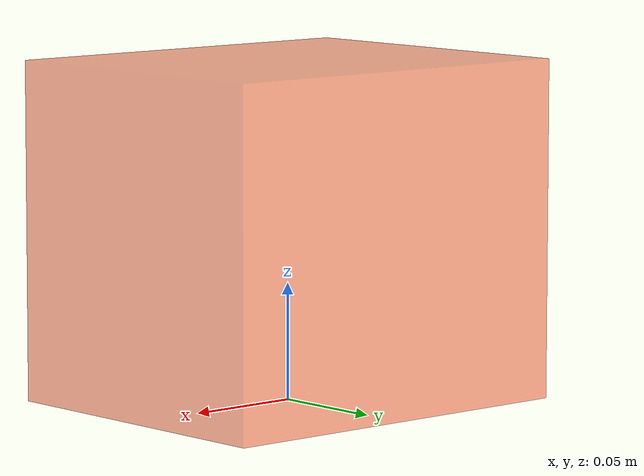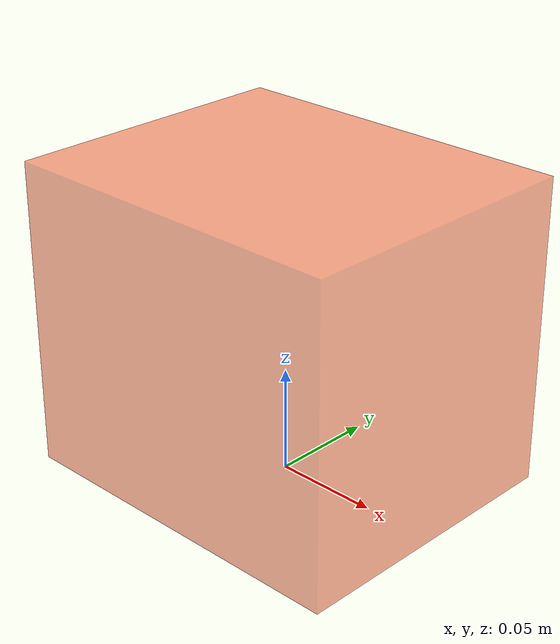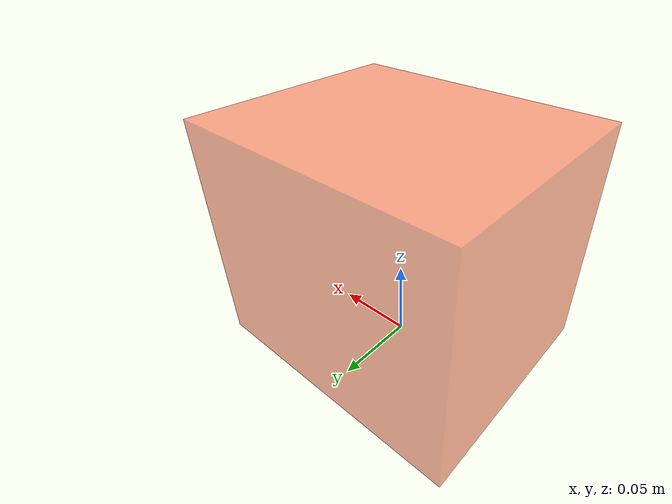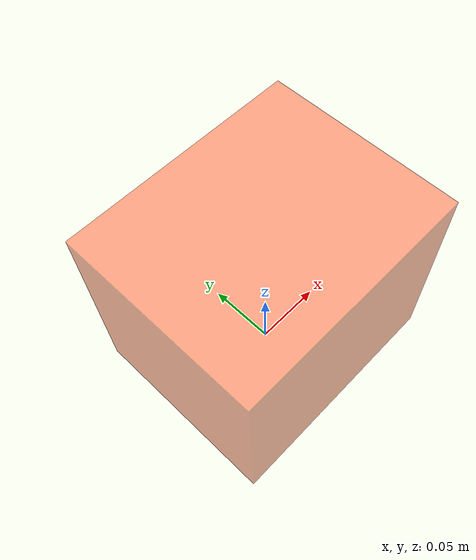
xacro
<?xml version="1.0"?>
<robot xmlns:xacro="http://www.ros.org/wiki/xacro" >
    <xacro:include filename="$(find fishbot_description)/urdf/rosmaze_bot/common_intertia.xacro" />
    <!-- COLOR DEFAND -->
    <material name="white">
        <color rgba="1 1 1 1" />
    </material>

    <material name="orange">
        <color rgba="1 0.3 0.1 0.5"/>
    </material>

    <material name="blue">
        <color rgba="0.2 0.2 1 1"/>
    </material>

    <material name="black">
        <color rgba="0 0 0 1"/>
    </material>

    <!-- BASE_FOOTPRINT LINK -->

        <link name="base_footprint">
        </link>

        <joint name="base_footprint_joint" type="fixed">
            <parent link="base_footprint"/>
            <child link="base_link"/>
            <origin xyz="0 0 0.0725" rpy="0 0 0"/>
        </joint>

    <!-- BASE LINK -->
        <link name="base_link">
            <visual>
                <origin xyz="0 0 0"/>
                <geometry>
                    <box size="0.17 0.14 0.145"/>
                </geometry>
                <material name="orange"/>
            </visual>

            <collision>
                <origin xyz="0 0 0"/>
                <geometry>
                    <box size="0.17 0.14 0.145"/>
                </geometry>
                <material name="orange"/>
            </collision>

            <xacro:box_inertia m="0.1" w="0.17" h="0.14" d="0.145" />
        </link>
        <gazebo reference="base_link">
            <material>Gazebo/Orange</material>
        </gazebo>
</robot>

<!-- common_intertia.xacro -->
<robot xmlns:xacro="http://ros.org/wiki/xacro">

    <!-- 矩形慣性矩陣 -->
    <xacro:macro name="box_inertia" params="m w h d">
        <inertial>
            <mass value="${m}" />
            <inertia ixx="${(m/12) * (h*h + d*d)}" ixy="0.0" ixz="0.0" iyy="${(m/12) * (w*w + d*d)}" iyz="0.0" izz="${(m/12) * (w*w + h*h)}" />
        </inertial>
    </xacro:macro>

    <!-- 圓柱形慣性矩陣 -->
    <xacro:macro name="cylinder_inertia" params="m r h">
        <inertial>
            <mass value="${m}" />
            <inertia ixx="${(m/12) * (3*r*r + h*h)}" ixy="0" ixz="0" iyy="${(m/12) * (3*r*r + h*h)}" iyz="0" izz="${(m/2) * (r*r)}" />
        </inertial>
    </xacro:macro>

    <!-- 球形慣性矩陣 -->
    <xacro:macro name="sphere_inertia" params="m r">
        <inertial>
            <mass value="${m}" />
            <inertia ixx="${(2/5) * m * (r*r)}" ixy="0.0" ixz="0.0" iyy="${(2/5) * m * (r*r)}" iyz="0.0" izz="${(2/5) * m * (r*r)}" />
        </inertial>
    </xacro:macro>

</robot>
